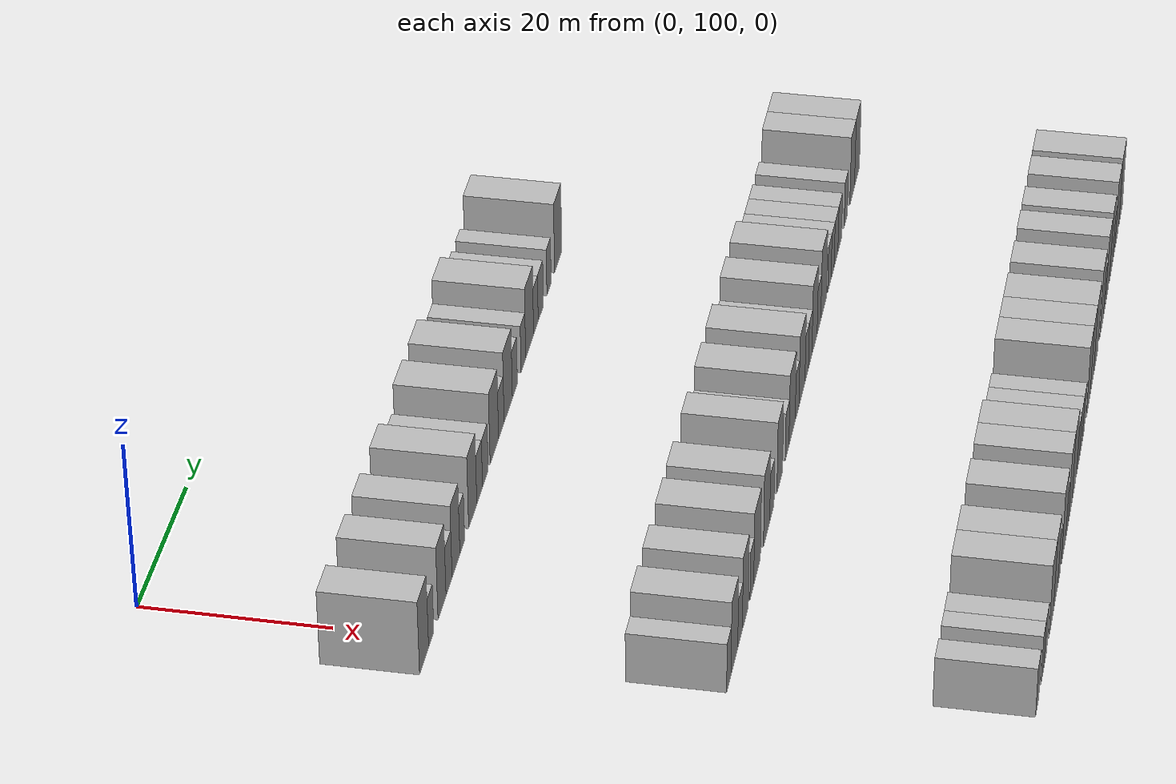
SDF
<sdf version="1.6">
 <world name="default">
  <model name="building_91">
   <static>1</static>
   <pose>25.0000 96.4935 0 0.000000 0.000000 0.000000</pose>
   <link name="link">
    <pose>0 0 4.50 0 0 0</pose>
    <collision name="collision"><geometry><box><size>10.0000 4.2490 9.0000</size></box></geometry></collision>
    <visual name="visual">
     <cast_shadows>0</cast_shadows>
     <geometry><box><size>10.0000 4.2490 9.0000</size></box></geometry>
     <material>
      <script>
       <uri>model://HANNAS_wall/materials/scripts</uri>
       <uri>model://HANNAS_wall/materials/textures</uri>
       <name>vrc/HANNAS_wall</name>
      </script>
     </material>
    </visual>
   </link>
  </model>
  <model name="building_92">
   <static>1</static>
   <pose>25.0000 99.8556 0 0.000000 0.000000 0.000000</pose>
   <link name="link">
    <pose>0 0 3.00 0 0 0</pose>
    <collision name="collision"><geometry><box><size>10.0000 2.4751 6.0000</size></box></geometry></collision>
    <visual name="visual">
     <cast_shadows>0</cast_shadows>
     <geometry><box><size>10.0000 2.4751 6.0000</size></box></geometry>
     <material>
      <script>
       <uri>model://HANNAS_wall/materials/scripts</uri>
       <uri>model://HANNAS_wall/materials/textures</uri>
       <name>vrc/HANNAS_wall</name>
      </script>
     </material>
    </visual>
   </link>
  </model>
  <model name="building_93">
   <static>1</static>
   <pose>25.0000 105.0283 0 0.000000 0.000000 0.000000</pose>
   <link name="link">
    <pose>0 0 4.50 0 0 0</pose>
    <collision name="collision"><geometry><box><size>10.0000 3.8705 9.0000</size></box></geometry></collision>
    <visual name="visual">
     <cast_shadows>0</cast_shadows>
     <geometry><box><size>10.0000 3.8705 9.0000</size></box></geometry>
     <material>
      <script>
       <uri>model://HANNAS_wall/materials/scripts</uri>
       <uri>model://HANNAS_wall/materials/textures</uri>
       <name>vrc/HANNAS_wall</name>
      </script>
     </material>
    </visual>
   </link>
  </model>
  <model name="building_94">
   <static>1</static>
   <pose>25.0000 108.4475 0 0.000000 0.000000 0.000000</pose>
   <link name="link">
    <pose>0 0 3.00 0 0 0</pose>
    <collision name="collision"><geometry><box><size>10.0000 2.9678 6.0000</size></box></geometry></collision>
    <visual name="visual">
     <cast_shadows>0</cast_shadows>
     <geometry><box><size>10.0000 2.9678 6.0000</size></box></geometry>
     <material>
      <script>
       <uri>model://HANNAS_wall/materials/scripts</uri>
       <uri>model://HANNAS_wall/materials/textures</uri>
       <name>vrc/HANNAS_wall</name>
      </script>
     </material>
    </visual>
   </link>
  </model>
  <model name="building_95">
   <static>1</static>
   <pose>25.0000 111.8554 0 0.000000 0.000000 0.000000</pose>
   <link name="link">
    <pose>0 0 4.50 0 0 0</pose>
    <collision name="collision"><geometry><box><size>10.0000 3.8480 9.0000</size></box></geometry></collision>
    <visual name="visual">
     <cast_shadows>0</cast_shadows>
     <geometry><box><size>10.0000 3.8480 9.0000</size></box></geometry>
     <material>
      <script>
       <uri>model://HANNAS_wall/materials/scripts</uri>
       <uri>model://HANNAS_wall/materials/textures</uri>
       <name>vrc/HANNAS_wall</name>
      </script>
     </material>
    </visual>
   </link>
  </model>
  <model name="building_96">
   <static>1</static>
   <pose>25.0000 114.9798 0 0.000000 0.000000 0.000000</pose>
   <link name="link">
    <pose>0 0 3.00 0 0 0</pose>
    <collision name="collision"><geometry><box><size>10.0000 2.4009 6.0000</size></box></geometry></collision>
    <visual name="visual">
     <cast_shadows>0</cast_shadows>
     <geometry><box><size>10.0000 2.4009 6.0000</size></box></geometry>
     <material>
      <script>
       <uri>model://HANNAS_wall/materials/scripts</uri>
       <uri>model://HANNAS_wall/materials/textures</uri>
       <name>vrc/HANNAS_wall</name>
      </script>
     </material>
    </visual>
   </link>
  </model>
  <model name="building_97">
   <static>1</static>
   <pose>25.0000 120.2445 0 0.000000 0.000000 0.000000</pose>
   <link name="link">
    <pose>0 0 4.50 0 0 0</pose>
    <collision name="collision"><geometry><box><size>10.0000 4.1283 9.0000</size></box></geometry></collision>
    <visual name="visual">
     <cast_shadows>0</cast_shadows>
     <geometry><box><size>10.0000 4.1283 9.0000</size></box></geometry>
     <material>
      <script>
       <uri>model://HANNAS_wall/materials/scripts</uri>
       <uri>model://HANNAS_wall/materials/textures</uri>
       <name>vrc/HANNAS_wall</name>
      </script>
     </material>
    </visual>
   </link>
  </model>
  <model name="building_98">
   <static>1</static>
   <pose>25.0000 123.7802 0 0.000000 0.000000 0.000000</pose>
   <link name="link">
    <pose>0 0 3.00 0 0 0</pose>
    <collision name="collision"><geometry><box><size>10.0000 2.9432 6.0000</size></box></geometry></collision>
    <visual name="visual">
     <cast_shadows>0</cast_shadows>
     <geometry><box><size>10.0000 2.9432 6.0000</size></box></geometry>
     <material>
      <script>
       <uri>model://HANNAS_wall/materials/scripts</uri>
       <uri>model://HANNAS_wall/materials/textures</uri>
       <name>vrc/HANNAS_wall</name>
      </script>
     </material>
    </visual>
   </link>
  </model>
  <model name="building_99">
   <static>1</static>
   <pose>25.0000 126.7246 0 0.000000 0.000000 0.000000</pose>
   <link name="link">
    <pose>0 0 3.00 0 0 0</pose>
    <collision name="collision"><geometry><box><size>10.0000 2.9456 6.0000</size></box></geometry></collision>
    <visual name="visual">
     <cast_shadows>0</cast_shadows>
     <geometry><box><size>10.0000 2.9456 6.0000</size></box></geometry>
     <material>
      <script>
       <uri>model://HANNAS_wall/materials/scripts</uri>
       <uri>model://HANNAS_wall/materials/textures</uri>
       <name>vrc/HANNAS_wall</name>
      </script>
     </material>
    </visual>
   </link>
  </model>
  <model name="building_100">
   <static>1</static>
   <pose>25.0000 131.4256 0 0.000000 0.000000 0.000000</pose>
   <link name="link">
    <pose>0 0 4.50 0 0 0</pose>
    <collision name="collision"><geometry><box><size>10.0000 4.4564 9.0000</size></box></geometry></collision>
    <visual name="visual">
     <cast_shadows>0</cast_shadows>
     <geometry><box><size>10.0000 4.4564 9.0000</size></box></geometry>
     <material>
      <script>
       <uri>model://HANNAS_wall/materials/scripts</uri>
       <uri>model://HANNAS_wall/materials/textures</uri>
       <name>vrc/HANNAS_wall</name>
      </script>
     </material>
    </visual>
   </link>
  </model>
  <model name="building_101">
   <static>1</static>
   <pose>25.0000 135.1337 0 0.000000 0.000000 0.000000</pose>
   <link name="link">
    <pose>0 0 3.00 0 0 0</pose>
    <collision name="collision"><geometry><box><size>10.0000 2.9598 6.0000</size></box></geometry></collision>
    <visual name="visual">
     <cast_shadows>0</cast_shadows>
     <geometry><box><size>10.0000 2.9598 6.0000</size></box></geometry>
     <material>
      <script>
       <uri>model://HANNAS_wall/materials/scripts</uri>
       <uri>model://HANNAS_wall/materials/textures</uri>
       <name>vrc/HANNAS_wall</name>
      </script>
     </material>
    </visual>
   </link>
  </model>
  <model name="building_102">
   <static>1</static>
   <pose>25.0000 138.8354 0 0.000000 0.000000 0.000000</pose>
   <link name="link">
    <pose>0 0 4.50 0 0 0</pose>
    <collision name="collision"><geometry><box><size>10.0000 4.4436 9.0000</size></box></geometry></collision>
    <visual name="visual">
     <cast_shadows>0</cast_shadows>
     <geometry><box><size>10.0000 4.4436 9.0000</size></box></geometry>
     <material>
      <script>
       <uri>model://HANNAS_wall/materials/scripts</uri>
       <uri>model://HANNAS_wall/materials/textures</uri>
       <name>vrc/HANNAS_wall</name>
      </script>
     </material>
    </visual>
   </link>
  </model>
  <model name="building_103">
   <static>1</static>
   <pose>25.0000 142.4284 0 0.000000 0.000000 0.000000</pose>
   <link name="link">
    <pose>0 0 3.00 0 0 0</pose>
    <collision name="collision"><geometry><box><size>10.0000 2.7425 6.0000</size></box></geometry></collision>
    <visual name="visual">
     <cast_shadows>0</cast_shadows>
     <geometry><box><size>10.0000 2.7425 6.0000</size></box></geometry>
     <material>
      <script>
       <uri>model://HANNAS_wall/materials/scripts</uri>
       <uri>model://HANNAS_wall/materials/textures</uri>
       <name>vrc/HANNAS_wall</name>
      </script>
     </material>
    </visual>
   </link>
  </model>
  <model name="building_104">
   <static>1</static>
   <pose>25.0000 147.0926 0 0.000000 0.000000 0.000000</pose>
   <link name="link">
    <pose>0 0 3.00 0 0 0</pose>
    <collision name="collision"><geometry><box><size>10.0000 2.5859 6.0000</size></box></geometry></collision>
    <visual name="visual">
     <cast_shadows>0</cast_shadows>
     <geometry><box><size>10.0000 2.5859 6.0000</size></box></geometry>
     <material>
      <script>
       <uri>model://HANNAS_wall/materials/scripts</uri>
       <uri>model://HANNAS_wall/materials/textures</uri>
       <name>vrc/HANNAS_wall</name>
      </script>
     </material>
    </visual>
   </link>
  </model>
  <model name="building_105">
   <static>1</static>
   <pose>25.0000 150.5885 0 0.000000 0.000000 0.000000</pose>
   <link name="link">
    <pose>0 0 4.50 0 0 0</pose>
    <collision name="collision"><geometry><box><size>10.0000 4.4059 9.0000</size></box></geometry></collision>
    <visual name="visual">
     <cast_shadows>0</cast_shadows>
     <geometry><box><size>10.0000 4.4059 9.0000</size></box></geometry>
     <material>
      <script>
       <uri>model://HANNAS_wall/materials/scripts</uri>
       <uri>model://HANNAS_wall/materials/textures</uri>
       <name>vrc/HANNAS_wall</name>
      </script>
     </material>
    </visual>
   </link>
  </model>
  <model name="building_106">
   <static>1</static>
   <pose>25.0000 154.0905 0 0.000000 0.000000 0.000000</pose>
   <link name="link">
    <pose>0 0 3.00 0 0 0</pose>
    <collision name="collision"><geometry><box><size>10.0000 2.5981 6.0000</size></box></geometry></collision>
    <visual name="visual">
     <cast_shadows>0</cast_shadows>
     <geometry><box><size>10.0000 2.5981 6.0000</size></box></geometry>
     <material>
      <script>
       <uri>model://HANNAS_wall/materials/scripts</uri>
       <uri>model://HANNAS_wall/materials/textures</uri>
       <name>vrc/HANNAS_wall</name>
      </script>
     </material>
    </visual>
   </link>
  </model>
  <model name="building_107">
   <static>1</static>
   <pose>25.0000 156.8845 0 0.000000 0.000000 0.000000</pose>
   <link name="link">
    <pose>0 0 3.00 0 0 0</pose>
    <collision name="collision"><geometry><box><size>10.0000 2.9899 6.0000</size></box></geometry></collision>
    <visual name="visual">
     <cast_shadows>0</cast_shadows>
     <geometry><box><size>10.0000 2.9899 6.0000</size></box></geometry>
     <material>
      <script>
       <uri>model://HANNAS_wall/materials/scripts</uri>
       <uri>model://HANNAS_wall/materials/textures</uri>
       <name>vrc/HANNAS_wall</name>
      </script>
     </material>
    </visual>
   </link>
  </model>
  <model name="building_108">
   <static>1</static>
   <pose>25.0000 161.5947 0 0.000000 0.000000 0.000000</pose>
   <link name="link">
    <pose>0 0 3.00 0 0 0</pose>
    <collision name="collision"><geometry><box><size>10.0000 2.4304 6.0000</size></box></geometry></collision>
    <visual name="visual">
     <cast_shadows>0</cast_shadows>
     <geometry><box><size>10.0000 2.4304 6.0000</size></box></geometry>
     <material>
      <script>
       <uri>model://HANNAS_wall/materials/scripts</uri>
       <uri>model://HANNAS_wall/materials/textures</uri>
       <name>vrc/HANNAS_wall</name>
      </script>
     </material>
    </visual>
   </link>
  </model>
  <model name="building_109">
   <static>1</static>
   <pose>25.0000 166.9336 0 0.000000 0.000000 0.000000</pose>
   <link name="link">
    <pose>0 0 4.50 0 0 0</pose>
    <collision name="collision"><geometry><box><size>10.0000 4.2474 9.0000</size></box></geometry></collision>
    <visual name="visual">
     <cast_shadows>0</cast_shadows>
     <geometry><box><size>10.0000 4.2474 9.0000</size></box></geometry>
     <material>
      <script>
       <uri>model://HANNAS_wall/materials/scripts</uri>
       <uri>model://HANNAS_wall/materials/textures</uri>
       <name>vrc/HANNAS_wall</name>
      </script>
     </material>
    </visual>
   </link>
  </model>
  <model name="building_224">
   <static>1</static>
   <pose>55.0000 98.1278 0 0.000000 0.000000 0.000000</pose>
   <link name="link">
    <pose>0 0 3.00 0 0 0</pose>
    <collision name="collision"><geometry><box><size>10.0000 2.7420 6.0000</size></box></geometry></collision>
    <visual name="visual">
     <cast_shadows>0</cast_shadows>
     <geometry><box><size>10.0000 2.7420 6.0000</size></box></geometry>
     <material>
      <script>
       <uri>model://HANNAS_wall/materials/scripts</uri>
       <uri>model://HANNAS_wall/materials/textures</uri>
       <name>vrc/HANNAS_wall</name>
      </script>
     </material>
    </visual>
   </link>
  </model>
  <model name="building_225">
   <static>1</static>
   <pose>55.0000 101.5954 0 0.000000 0.000000 0.000000</pose>
   <link name="link">
    <pose>0 0 4.50 0 0 0</pose>
    <collision name="collision"><geometry><box><size>10.0000 4.1932 9.0000</size></box></geometry></collision>
    <visual name="visual">
     <cast_shadows>0</cast_shadows>
     <geometry><box><size>10.0000 4.1932 9.0000</size></box></geometry>
     <material>
      <script>
       <uri>model://HANNAS_wall/materials/scripts</uri>
       <uri>model://HANNAS_wall/materials/textures</uri>
       <name>vrc/HANNAS_wall</name>
      </script>
     </material>
    </visual>
   </link>
  </model>
  <model name="building_226">
   <static>1</static>
   <pose>55.0000 105.1467 0 0.000000 0.000000 0.000000</pose>
   <link name="link">
    <pose>0 0 3.00 0 0 0</pose>
    <collision name="collision"><geometry><box><size>10.0000 2.9094 6.0000</size></box></geometry></collision>
    <visual name="visual">
     <cast_shadows>0</cast_shadows>
     <geometry><box><size>10.0000 2.9094 6.0000</size></box></geometry>
     <material>
      <script>
       <uri>model://HANNAS_wall/materials/scripts</uri>
       <uri>model://HANNAS_wall/materials/textures</uri>
       <name>vrc/HANNAS_wall</name>
      </script>
     </material>
    </visual>
   </link>
  </model>
  <model name="building_227">
   <static>1</static>
   <pose>55.0000 108.5158 0 0.000000 0.000000 0.000000</pose>
   <link name="link">
    <pose>0 0 4.50 0 0 0</pose>
    <collision name="collision"><geometry><box><size>10.0000 3.8287 9.0000</size></box></geometry></collision>
    <visual name="visual">
     <cast_shadows>0</cast_shadows>
     <geometry><box><size>10.0000 3.8287 9.0000</size></box></geometry>
     <material>
      <script>
       <uri>model://HANNAS_wall/materials/scripts</uri>
       <uri>model://HANNAS_wall/materials/textures</uri>
       <name>vrc/HANNAS_wall</name>
      </script>
     </material>
    </visual>
   </link>
  </model>
  <model name="building_228">
   <static>1</static>
   <pose>55.0000 112.6459 0 0.000000 0.000000 0.000000</pose>
   <link name="link">
    <pose>0 0 3.00 0 0 0</pose>
    <collision name="collision"><geometry><box><size>10.0000 2.4316 6.0000</size></box></geometry></collision>
    <visual name="visual">
     <cast_shadows>0</cast_shadows>
     <geometry><box><size>10.0000 2.4316 6.0000</size></box></geometry>
     <material>
      <script>
       <uri>model://HANNAS_wall/materials/scripts</uri>
       <uri>model://HANNAS_wall/materials/textures</uri>
       <name>vrc/HANNAS_wall</name>
      </script>
     </material>
    </visual>
   </link>
  </model>
  <model name="building_229">
   <static>1</static>
   <pose>55.0000 116.0476 0 0.000000 0.000000 0.000000</pose>
   <link name="link">
    <pose>0 0 4.50 0 0 0</pose>
    <collision name="collision"><geometry><box><size>10.0000 4.3718 9.0000</size></box></geometry></collision>
    <visual name="visual">
     <cast_shadows>0</cast_shadows>
     <geometry><box><size>10.0000 4.3718 9.0000</size></box></geometry>
     <material>
      <script>
       <uri>model://HANNAS_wall/materials/scripts</uri>
       <uri>model://HANNAS_wall/materials/textures</uri>
       <name>vrc/HANNAS_wall</name>
      </script>
     </material>
    </visual>
   </link>
  </model>
  <model name="building_230">
   <static>1</static>
   <pose>55.0000 122.3267 0 0.000000 0.000000 0.000000</pose>
   <link name="link">
    <pose>0 0 4.50 0 0 0</pose>
    <collision name="collision"><geometry><box><size>10.0000 4.1865 9.0000</size></box></geometry></collision>
    <visual name="visual">
     <cast_shadows>0</cast_shadows>
     <geometry><box><size>10.0000 4.1865 9.0000</size></box></geometry>
     <material>
      <script>
       <uri>model://HANNAS_wall/materials/scripts</uri>
       <uri>model://HANNAS_wall/materials/textures</uri>
       <name>vrc/HANNAS_wall</name>
      </script>
     </material>
    </visual>
   </link>
  </model>
  <model name="building_231">
   <static>1</static>
   <pose>55.0000 125.8758 0 0.000000 0.000000 0.000000</pose>
   <link name="link">
    <pose>0 0 3.00 0 0 0</pose>
    <collision name="collision"><geometry><box><size>10.0000 2.9116 6.0000</size></box></geometry></collision>
    <visual name="visual">
     <cast_shadows>0</cast_shadows>
     <geometry><box><size>10.0000 2.9116 6.0000</size></box></geometry>
     <material>
      <script>
       <uri>model://HANNAS_wall/materials/scripts</uri>
       <uri>model://HANNAS_wall/materials/textures</uri>
       <name>vrc/HANNAS_wall</name>
      </script>
     </material>
    </visual>
   </link>
  </model>
  <model name="building_232">
   <static>1</static>
   <pose>55.0000 131.2059 0 0.000000 0.000000 0.000000</pose>
   <link name="link">
    <pose>0 0 4.50 0 0 0</pose>
    <collision name="collision"><geometry><box><size>10.0000 3.7486 9.0000</size></box></geometry></collision>
    <visual name="visual">
     <cast_shadows>0</cast_shadows>
     <geometry><box><size>10.0000 3.7486 9.0000</size></box></geometry>
     <material>
      <script>
       <uri>model://HANNAS_wall/materials/scripts</uri>
       <uri>model://HANNAS_wall/materials/textures</uri>
       <name>vrc/HANNAS_wall</name>
      </script>
     </material>
    </visual>
   </link>
  </model>
  <model name="building_233">
   <static>1</static>
   <pose>55.0000 136.3542 0 0.000000 0.000000 0.000000</pose>
   <link name="link">
    <pose>0 0 3.00 0 0 0</pose>
    <collision name="collision"><geometry><box><size>10.0000 2.5479 6.0000</size></box></geometry></collision>
    <visual name="visual">
     <cast_shadows>0</cast_shadows>
     <geometry><box><size>10.0000 2.5479 6.0000</size></box></geometry>
     <material>
      <script>
       <uri>model://HANNAS_wall/materials/scripts</uri>
       <uri>model://HANNAS_wall/materials/textures</uri>
       <name>vrc/HANNAS_wall</name>
      </script>
     </material>
    </visual>
   </link>
  </model>
  <model name="building_234">
   <static>1</static>
   <pose>55.0000 139.8401 0 0.000000 0.000000 0.000000</pose>
   <link name="link">
    <pose>0 0 4.50 0 0 0</pose>
    <collision name="collision"><geometry><box><size>10.0000 4.4240 9.0000</size></box></geometry></collision>
    <visual name="visual">
     <cast_shadows>0</cast_shadows>
     <geometry><box><size>10.0000 4.4240 9.0000</size></box></geometry>
     <material>
      <script>
       <uri>model://HANNAS_wall/materials/scripts</uri>
       <uri>model://HANNAS_wall/materials/textures</uri>
       <name>vrc/HANNAS_wall</name>
      </script>
     </material>
    </visual>
   </link>
  </model>
  <model name="building_235">
   <static>1</static>
   <pose>55.0000 143.3857 0 0.000000 0.000000 0.000000</pose>
   <link name="link">
    <pose>0 0 3.00 0 0 0</pose>
    <collision name="collision"><geometry><box><size>10.0000 2.6671 6.0000</size></box></geometry></collision>
    <visual name="visual">
     <cast_shadows>0</cast_shadows>
     <geometry><box><size>10.0000 2.6671 6.0000</size></box></geometry>
     <material>
      <script>
       <uri>model://HANNAS_wall/materials/scripts</uri>
       <uri>model://HANNAS_wall/materials/textures</uri>
       <name>vrc/HANNAS_wall</name>
      </script>
     </material>
    </visual>
   </link>
  </model>
  <model name="building_236">
   <static>1</static>
   <pose>55.0000 146.8959 0 0.000000 0.000000 0.000000</pose>
   <link name="link">
    <pose>0 0 4.50 0 0 0</pose>
    <collision name="collision"><geometry><box><size>10.0000 4.3533 9.0000</size></box></geometry></collision>
    <visual name="visual">
     <cast_shadows>0</cast_shadows>
     <geometry><box><size>10.0000 4.3533 9.0000</size></box></geometry>
     <material>
      <script>
       <uri>model://HANNAS_wall/materials/scripts</uri>
       <uri>model://HANNAS_wall/materials/textures</uri>
       <name>vrc/HANNAS_wall</name>
      </script>
     </material>
    </visual>
   </link>
  </model>
  <model name="building_237">
   <static>1</static>
   <pose>55.0000 150.3574 0 0.000000 0.000000 0.000000</pose>
   <link name="link">
    <pose>0 0 3.00 0 0 0</pose>
    <collision name="collision"><geometry><box><size>10.0000 2.5697 6.0000</size></box></geometry></collision>
    <visual name="visual">
     <cast_shadows>0</cast_shadows>
     <geometry><box><size>10.0000 2.5697 6.0000</size></box></geometry>
     <material>
      <script>
       <uri>model://HANNAS_wall/materials/scripts</uri>
       <uri>model://HANNAS_wall/materials/textures</uri>
       <name>vrc/HANNAS_wall</name>
      </script>
     </material>
    </visual>
   </link>
  </model>
  <model name="building_238">
   <static>1</static>
   <pose>55.0000 152.8997 0 0.000000 0.000000 0.000000</pose>
   <link name="link">
    <pose>0 0 3.00 0 0 0</pose>
    <collision name="collision"><geometry><box><size>10.0000 2.5149 6.0000</size></box></geometry></collision>
    <visual name="visual">
     <cast_shadows>0</cast_shadows>
     <geometry><box><size>10.0000 2.5149 6.0000</size></box></geometry>
     <material>
      <script>
       <uri>model://HANNAS_wall/materials/scripts</uri>
       <uri>model://HANNAS_wall/materials/textures</uri>
       <name>vrc/HANNAS_wall</name>
      </script>
     </material>
    </visual>
   </link>
  </model>
  <model name="building_239">
   <static>1</static>
   <pose>55.0000 156.1098 0 0.000000 0.000000 0.000000</pose>
   <link name="link">
    <pose>0 0 4.50 0 0 0</pose>
    <collision name="collision"><geometry><box><size>10.0000 3.9054 9.0000</size></box></geometry></collision>
    <visual name="visual">
     <cast_shadows>0</cast_shadows>
     <geometry><box><size>10.0000 3.9054 9.0000</size></box></geometry>
     <material>
      <script>
       <uri>model://HANNAS_wall/materials/scripts</uri>
       <uri>model://HANNAS_wall/materials/textures</uri>
       <name>vrc/HANNAS_wall</name>
      </script>
     </material>
    </visual>
   </link>
  </model>
  <model name="building_240">
   <static>1</static>
   <pose>55.0000 159.4379 0 0.000000 0.000000 0.000000</pose>
   <link name="link">
    <pose>0 0 3.00 0 0 0</pose>
    <collision name="collision"><geometry><box><size>10.0000 2.7508 6.0000</size></box></geometry></collision>
    <visual name="visual">
     <cast_shadows>0</cast_shadows>
     <geometry><box><size>10.0000 2.7508 6.0000</size></box></geometry>
     <material>
      <script>
       <uri>model://HANNAS_wall/materials/scripts</uri>
       <uri>model://HANNAS_wall/materials/textures</uri>
       <name>vrc/HANNAS_wall</name>
      </script>
     </material>
    </visual>
   </link>
  </model>
  <model name="building_241">
   <static>1</static>
   <pose>55.0000 162.9006 0 0.000000 0.000000 0.000000</pose>
   <link name="link">
    <pose>0 0 4.50 0 0 0</pose>
    <collision name="collision"><geometry><box><size>10.0000 4.1746 9.0000</size></box></geometry></collision>
    <visual name="visual">
     <cast_shadows>0</cast_shadows>
     <geometry><box><size>10.0000 4.1746 9.0000</size></box></geometry>
     <material>
      <script>
       <uri>model://HANNAS_wall/materials/scripts</uri>
       <uri>model://HANNAS_wall/materials/textures</uri>
       <name>vrc/HANNAS_wall</name>
      </script>
     </material>
    </visual>
   </link>
  </model>
  <model name="building_242">
   <static>1</static>
   <pose>55.0000 167.3005 0 0.000000 0.000000 0.000000</pose>
   <link name="link">
    <pose>0 0 3.00 0 0 0</pose>
    <collision name="collision"><geometry><box><size>10.0000 2.6252 6.0000</size></box></geometry></collision>
    <visual name="visual">
     <cast_shadows>0</cast_shadows>
     <geometry><box><size>10.0000 2.6252 6.0000</size></box></geometry>
     <material>
      <script>
       <uri>model://HANNAS_wall/materials/scripts</uri>
       <uri>model://HANNAS_wall/materials/textures</uri>
       <name>vrc/HANNAS_wall</name>
      </script>
     </material>
    </visual>
   </link>
  </model>
  <model name="building_243">
   <static>1</static>
   <pose>55.0000 169.8224 0 0.000000 0.000000 0.000000</pose>
   <link name="link">
    <pose>0 0 3.00 0 0 0</pose>
    <collision name="collision"><geometry><box><size>10.0000 2.4186 6.0000</size></box></geometry></collision>
    <visual name="visual">
     <cast_shadows>0</cast_shadows>
     <geometry><box><size>10.0000 2.4186 6.0000</size></box></geometry>
     <material>
      <script>
       <uri>model://HANNAS_wall/materials/scripts</uri>
       <uri>model://HANNAS_wall/materials/textures</uri>
       <name>vrc/HANNAS_wall</name>
      </script>
     </material>
    </visual>
   </link>
  </model>
  <model name="building_244">
   <static>1</static>
   <pose>55.0000 172.5305 0 0.000000 0.000000 0.000000</pose>
   <link name="link">
    <pose>0 0 3.00 0 0 0</pose>
    <collision name="collision"><geometry><box><size>10.0000 2.9975 6.0000</size></box></geometry></collision>
    <visual name="visual">
     <cast_shadows>0</cast_shadows>
     <geometry><box><size>10.0000 2.9975 6.0000</size></box></geometry>
     <material>
      <script>
       <uri>model://HANNAS_wall/materials/scripts</uri>
       <uri>model://HANNAS_wall/materials/textures</uri>
       <name>vrc/HANNAS_wall</name>
      </script>
     </material>
    </visual>
   </link>
  </model>
  <model name="building_245">
   <static>1</static>
   <pose>55.0000 175.4483 0 0.000000 0.000000 0.000000</pose>
   <link name="link">
    <pose>0 0 3.00 0 0 0</pose>
    <collision name="collision"><geometry><box><size>10.0000 2.8380 6.0000</size></box></geometry></collision>
    <visual name="visual">
     <cast_shadows>0</cast_shadows>
     <geometry><box><size>10.0000 2.8380 6.0000</size></box></geometry>
     <material>
      <script>
       <uri>model://HANNAS_wall/materials/scripts</uri>
       <uri>model://HANNAS_wall/materials/textures</uri>
       <name>vrc/HANNAS_wall</name>
      </script>
     </material>
    </visual>
   </link>
  </model>
  <model name="building_246">
   <static>1</static>
   <pose>55.0000 180.1754 0 0.000000 0.000000 0.000000</pose>
   <link name="link">
    <pose>0 0 3.00 0 0 0</pose>
    <collision name="collision"><geometry><box><size>10.0000 2.6161 6.0000</size></box></geometry></collision>
    <visual name="visual">
     <cast_shadows>0</cast_shadows>
     <geometry><box><size>10.0000 2.6161 6.0000</size></box></geometry>
     <material>
      <script>
       <uri>model://HANNAS_wall/materials/scripts</uri>
       <uri>model://HANNAS_wall/materials/textures</uri>
       <name>vrc/HANNAS_wall</name>
      </script>
     </material>
    </visual>
   </link>
  </model>
  <model name="building_247">
   <static>1</static>
   <pose>55.0000 185.3815 0 0.000000 0.000000 0.000000</pose>
   <link name="link">
    <pose>0 0 4.50 0 0 0</pose>
    <collision name="collision"><geometry><box><size>10.0000 3.7962 9.0000</size></box></geometry></collision>
    <visual name="visual">
     <cast_shadows>0</cast_shadows>
     <geometry><box><size>10.0000 3.7962 9.0000</size></box></geometry>
     <material>
      <script>
       <uri>model://HANNAS_wall/materials/scripts</uri>
       <uri>model://HANNAS_wall/materials/textures</uri>
       <name>vrc/HANNAS_wall</name>
      </script>
     </material>
    </visual>
   </link>
  </model>
  <model name="building_248">
   <static>1</static>
   <pose>55.0000 189.3229 0 0.000000 0.000000 0.000000</pose>
   <link name="link">
    <pose>0 0 4.50 0 0 0</pose>
    <collision name="collision"><geometry><box><size>10.0000 4.0865 9.0000</size></box></geometry></collision>
    <visual name="visual">
     <cast_shadows>0</cast_shadows>
     <geometry><box><size>10.0000 4.0865 9.0000</size></box></geometry>
     <material>
      <script>
       <uri>model://HANNAS_wall/materials/scripts</uri>
       <uri>model://HANNAS_wall/materials/textures</uri>
       <name>vrc/HANNAS_wall</name>
      </script>
     </material>
    </visual>
   </link>
  </model>
  <model name="building_359">
   <static>1</static>
   <pose>85.0000 99.6532 0 0.000000 0.000000 0.000000</pose>
   <link name="link">
    <pose>0 0 3.00 0 0 0</pose>
    <collision name="collision"><geometry><box><size>10.0000 2.9987 6.0000</size></box></geometry></collision>
    <visual name="visual">
     <cast_shadows>0</cast_shadows>
     <geometry><box><size>10.0000 2.9987 6.0000</size></box></geometry>
     <material>
      <script>
       <uri>model://HANNAS_wall/materials/scripts</uri>
       <uri>model://HANNAS_wall/materials/textures</uri>
       <name>vrc/HANNAS_wall</name>
      </script>
     </material>
    </visual>
   </link>
  </model>
  <model name="building_360">
   <static>1</static>
   <pose>85.0000 104.3724 0 0.000000 0.000000 0.000000</pose>
   <link name="link">
    <pose>0 0 3.00 0 0 0</pose>
    <collision name="collision"><geometry><box><size>10.0000 2.4397 6.0000</size></box></geometry></collision>
    <visual name="visual">
     <cast_shadows>0</cast_shadows>
     <geometry><box><size>10.0000 2.4397 6.0000</size></box></geometry>
     <material>
      <script>
       <uri>model://HANNAS_wall/materials/scripts</uri>
       <uri>model://HANNAS_wall/materials/textures</uri>
       <name>vrc/HANNAS_wall</name>
      </script>
     </material>
    </visual>
   </link>
  </model>
  <model name="building_361">
   <static>1</static>
   <pose>85.0000 107.0558 0 0.000000 0.000000 0.000000</pose>
   <link name="link">
    <pose>0 0 3.00 0 0 0</pose>
    <collision name="collision"><geometry><box><size>10.0000 2.9271 6.0000</size></box></geometry></collision>
    <visual name="visual">
     <cast_shadows>0</cast_shadows>
     <geometry><box><size>10.0000 2.9271 6.0000</size></box></geometry>
     <material>
      <script>
       <uri>model://HANNAS_wall/materials/scripts</uri>
       <uri>model://HANNAS_wall/materials/textures</uri>
       <name>vrc/HANNAS_wall</name>
      </script>
     </material>
    </visual>
   </link>
  </model>
  <model name="building_362">
   <static>1</static>
   <pose>85.0000 112.6470 0 0.000000 0.000000 0.000000</pose>
   <link name="link">
    <pose>0 0 4.50 0 0 0</pose>
    <collision name="collision"><geometry><box><size>10.0000 4.2553 9.0000</size></box></geometry></collision>
    <visual name="visual">
     <cast_shadows>0</cast_shadows>
     <geometry><box><size>10.0000 4.2553 9.0000</size></box></geometry>
     <material>
      <script>
       <uri>model://HANNAS_wall/materials/scripts</uri>
       <uri>model://HANNAS_wall/materials/textures</uri>
       <name>vrc/HANNAS_wall</name>
      </script>
     </material>
    </visual>
   </link>
  </model>
  <model name="building_363">
   <static>1</static>
   <pose>85.0000 116.8332 0 0.000000 0.000000 0.000000</pose>
   <link name="link">
    <pose>0 0 4.50 0 0 0</pose>
    <collision name="collision"><geometry><box><size>10.0000 4.1170 9.0000</size></box></geometry></collision>
    <visual name="visual">
     <cast_shadows>0</cast_shadows>
     <geometry><box><size>10.0000 4.1170 9.0000</size></box></geometry>
     <material>
      <script>
       <uri>model://HANNAS_wall/materials/scripts</uri>
       <uri>model://HANNAS_wall/materials/textures</uri>
       <name>vrc/HANNAS_wall</name>
      </script>
     </material>
    </visual>
   </link>
  </model>
  <model name="building_364">
   <static>1</static>
   <pose>85.0000 120.1593 0 0.000000 0.000000 0.000000</pose>
   <link name="link">
    <pose>0 0 3.00 0 0 0</pose>
    <collision name="collision"><geometry><box><size>10.0000 2.5354 6.0000</size></box></geometry></collision>
    <visual name="visual">
     <cast_shadows>0</cast_shadows>
     <geometry><box><size>10.0000 2.5354 6.0000</size></box></geometry>
     <material>
      <script>
       <uri>model://HANNAS_wall/materials/scripts</uri>
       <uri>model://HANNAS_wall/materials/textures</uri>
       <name>vrc/HANNAS_wall</name>
      </script>
     </material>
    </visual>
   </link>
  </model>
  <model name="building_365">
   <static>1</static>
   <pose>85.0000 124.5559 0 0.000000 0.000000 0.000000</pose>
   <link name="link">
    <pose>0 0 4.50 0 0 0</pose>
    <collision name="collision"><geometry><box><size>10.0000 4.2577 9.0000</size></box></geometry></collision>
    <visual name="visual">
     <cast_shadows>0</cast_shadows>
     <geometry><box><size>10.0000 4.2577 9.0000</size></box></geometry>
     <material>
      <script>
       <uri>model://HANNAS_wall/materials/scripts</uri>
       <uri>model://HANNAS_wall/materials/textures</uri>
       <name>vrc/HANNAS_wall</name>
      </script>
     </material>
    </visual>
   </link>
  </model>
  <model name="building_366">
   <static>1</static>
   <pose>85.0000 127.9231 0 0.000000 0.000000 0.000000</pose>
   <link name="link">
    <pose>0 0 3.00 0 0 0</pose>
    <collision name="collision"><geometry><box><size>10.0000 2.4768 6.0000</size></box></geometry></collision>
    <visual name="visual">
     <cast_shadows>0</cast_shadows>
     <geometry><box><size>10.0000 2.4768 6.0000</size></box></geometry>
     <material>
      <script>
       <uri>model://HANNAS_wall/materials/scripts</uri>
       <uri>model://HANNAS_wall/materials/textures</uri>
       <name>vrc/HANNAS_wall</name>
      </script>
     </material>
    </visual>
   </link>
  </model>
  <model name="building_367">
   <static>1</static>
   <pose>85.0000 131.0327 0 0.000000 0.000000 0.000000</pose>
   <link name="link">
    <pose>0 0 4.50 0 0 0</pose>
    <collision name="collision"><geometry><box><size>10.0000 3.7424 9.0000</size></box></geometry></collision>
    <visual name="visual">
     <cast_shadows>0</cast_shadows>
     <geometry><box><size>10.0000 3.7424 9.0000</size></box></geometry>
     <material>
      <script>
       <uri>model://HANNAS_wall/materials/scripts</uri>
       <uri>model://HANNAS_wall/materials/textures</uri>
       <name>vrc/HANNAS_wall</name>
      </script>
     </material>
    </visual>
   </link>
  </model>
  <model name="building_368">
   <static>1</static>
   <pose>85.0000 134.9023 0 0.000000 0.000000 0.000000</pose>
   <link name="link">
    <pose>0 0 4.50 0 0 0</pose>
    <collision name="collision"><geometry><box><size>10.0000 3.9969 9.0000</size></box></geometry></collision>
    <visual name="visual">
     <cast_shadows>0</cast_shadows>
     <geometry><box><size>10.0000 3.9969 9.0000</size></box></geometry>
     <material>
      <script>
       <uri>model://HANNAS_wall/materials/scripts</uri>
       <uri>model://HANNAS_wall/materials/textures</uri>
       <name>vrc/HANNAS_wall</name>
      </script>
     </material>
    </visual>
   </link>
  </model>
  <model name="building_369">
   <static>1</static>
   <pose>85.0000 139.2153 0 0.000000 0.000000 0.000000</pose>
   <link name="link">
    <pose>0 0 3.00 0 0 0</pose>
    <collision name="collision"><geometry><box><size>10.0000 2.6291 6.0000</size></box></geometry></collision>
    <visual name="visual">
     <cast_shadows>0</cast_shadows>
     <geometry><box><size>10.0000 2.6291 6.0000</size></box></geometry>
     <material>
      <script>
       <uri>model://HANNAS_wall/materials/scripts</uri>
       <uri>model://HANNAS_wall/materials/textures</uri>
       <name>vrc/HANNAS_wall</name>
      </script>
     </material>
    </visual>
   </link>
  </model>
  <model name="building_370">
   <static>1</static>
   <pose>85.0000 141.9546 0 0.000000 0.000000 0.000000</pose>
   <link name="link">
    <pose>0 0 3.00 0 0 0</pose>
    <collision name="collision"><geometry><box><size>10.0000 2.8494 6.0000</size></box></geometry></collision>
    <visual name="visual">
     <cast_shadows>0</cast_shadows>
     <geometry><box><size>10.0000 2.8494 6.0000</size></box></geometry>
     <material>
      <script>
       <uri>model://HANNAS_wall/materials/scripts</uri>
       <uri>model://HANNAS_wall/materials/textures</uri>
       <name>vrc/HANNAS_wall</name>
      </script>
     </material>
    </visual>
   </link>
  </model>
  <model name="building_371">
   <static>1</static>
   <pose>85.0000 144.6244 0 0.000000 0.000000 0.000000</pose>
   <link name="link">
    <pose>0 0 3.00 0 0 0</pose>
    <collision name="collision"><geometry><box><size>10.0000 2.4903 6.0000</size></box></geometry></collision>
    <visual name="visual">
     <cast_shadows>0</cast_shadows>
     <geometry><box><size>10.0000 2.4903 6.0000</size></box></geometry>
     <material>
      <script>
       <uri>model://HANNAS_wall/materials/scripts</uri>
       <uri>model://HANNAS_wall/materials/textures</uri>
       <name>vrc/HANNAS_wall</name>
      </script>
     </material>
    </visual>
   </link>
  </model>
  <model name="building_372">
   <static>1</static>
   <pose>85.0000 149.9006 0 0.000000 0.000000 0.000000</pose>
   <link name="link">
    <pose>0 0 4.50 0 0 0</pose>
    <collision name="collision"><geometry><box><size>10.0000 4.0621 9.0000</size></box></geometry></collision>
    <visual name="visual">
     <cast_shadows>0</cast_shadows>
     <geometry><box><size>10.0000 4.0621 9.0000</size></box></geometry>
     <material>
      <script>
       <uri>model://HANNAS_wall/materials/scripts</uri>
       <uri>model://HANNAS_wall/materials/textures</uri>
       <name>vrc/HANNAS_wall</name>
      </script>
     </material>
    </visual>
   </link>
  </model>
  <model name="building_373">
   <static>1</static>
   <pose>85.0000 153.8373 0 0.000000 0.000000 0.000000</pose>
   <link name="link">
    <pose>0 0 4.50 0 0 0</pose>
    <collision name="collision"><geometry><box><size>10.0000 3.8113 9.0000</size></box></geometry></collision>
    <visual name="visual">
     <cast_shadows>0</cast_shadows>
     <geometry><box><size>10.0000 3.8113 9.0000</size></box></geometry>
     <material>
      <script>
       <uri>model://HANNAS_wall/materials/scripts</uri>
       <uri>model://HANNAS_wall/materials/textures</uri>
       <name>vrc/HANNAS_wall</name>
      </script>
     </material>
    </visual>
   </link>
  </model>
  <model name="building_374">
   <static>1</static>
   <pose>85.0000 157.9921 0 0.000000 0.000000 0.000000</pose>
   <link name="link">
    <pose>0 0 4.50 0 0 0</pose>
    <collision name="collision"><geometry><box><size>10.0000 4.4983 9.0000</size></box></geometry></collision>
    <visual name="visual">
     <cast_shadows>0</cast_shadows>
     <geometry><box><size>10.0000 4.4983 9.0000</size></box></geometry>
     <material>
      <script>
       <uri>model://HANNAS_wall/materials/scripts</uri>
       <uri>model://HANNAS_wall/materials/textures</uri>
       <name>vrc/HANNAS_wall</name>
      </script>
     </material>
    </visual>
   </link>
  </model>
  <model name="building_375">
   <static>1</static>
   <pose>85.0000 164.2936 0 0.000000 0.000000 0.000000</pose>
   <link name="link">
    <pose>0 0 4.50 0 0 0</pose>
    <collision name="collision"><geometry><box><size>10.0000 4.1046 9.0000</size></box></geometry></collision>
    <visual name="visual">
     <cast_shadows>0</cast_shadows>
     <geometry><box><size>10.0000 4.1046 9.0000</size></box></geometry>
     <material>
      <script>
       <uri>model://HANNAS_wall/materials/scripts</uri>
       <uri>model://HANNAS_wall/materials/textures</uri>
       <name>vrc/HANNAS_wall</name>
      </script>
     </material>
    </visual>
   </link>
  </model>
  <model name="building_376">
   <static>1</static>
   <pose>85.0000 167.5560 0 0.000000 0.000000 0.000000</pose>
   <link name="link">
    <pose>0 0 3.00 0 0 0</pose>
    <collision name="collision"><geometry><box><size>10.0000 2.4202 6.0000</size></box></geometry></collision>
    <visual name="visual">
     <cast_shadows>0</cast_shadows>
     <geometry><box><size>10.0000 2.4202 6.0000</size></box></geometry>
     <material>
      <script>
       <uri>model://HANNAS_wall/materials/scripts</uri>
       <uri>model://HANNAS_wall/materials/textures</uri>
       <name>vrc/HANNAS_wall</name>
      </script>
     </material>
    </visual>
   </link>
  </model>
  <model name="building_377">
   <static>1</static>
   <pose>85.0000 170.5937 0 0.000000 0.000000 0.000000</pose>
   <link name="link">
    <pose>0 0 4.50 0 0 0</pose>
    <collision name="collision"><geometry><box><size>10.0000 3.6553 9.0000</size></box></geometry></collision>
    <visual name="visual">
     <cast_shadows>0</cast_shadows>
     <geometry><box><size>10.0000 3.6553 9.0000</size></box></geometry>
     <material>
      <script>
       <uri>model://HANNAS_wall/materials/scripts</uri>
       <uri>model://HANNAS_wall/materials/textures</uri>
       <name>vrc/HANNAS_wall</name>
      </script>
     </material>
    </visual>
   </link>
  </model>
  <model name="building_378">
   <static>1</static>
   <pose>85.0000 175.2540 0 0.000000 0.000000 0.000000</pose>
   <link name="link">
    <pose>0 0 4.50 0 0 0</pose>
    <collision name="collision"><geometry><box><size>10.0000 3.6652 9.0000</size></box></geometry></collision>
    <visual name="visual">
     <cast_shadows>0</cast_shadows>
     <geometry><box><size>10.0000 3.6652 9.0000</size></box></geometry>
     <material>
      <script>
       <uri>model://HANNAS_wall/materials/scripts</uri>
       <uri>model://HANNAS_wall/materials/textures</uri>
       <name>vrc/HANNAS_wall</name>
      </script>
     </material>
    </visual>
   </link>
  </model>
  <model name="building_379">
   <static>1</static>
   <pose>85.0000 178.3381 0 0.000000 0.000000 0.000000</pose>
   <link name="link">
    <pose>0 0 3.00 0 0 0</pose>
    <collision name="collision"><geometry><box><size>10.0000 2.5031 6.0000</size></box></geometry></collision>
    <visual name="visual">
     <cast_shadows>0</cast_shadows>
     <geometry><box><size>10.0000 2.5031 6.0000</size></box></geometry>
     <material>
      <script>
       <uri>model://HANNAS_wall/materials/scripts</uri>
       <uri>model://HANNAS_wall/materials/textures</uri>
       <name>vrc/HANNAS_wall</name>
      </script>
     </material>
    </visual>
   </link>
  </model>
  <model name="building_380">
   <static>1</static>
   <pose>85.0000 181.4800 0 0.000000 0.000000 0.000000</pose>
   <link name="link">
    <pose>0 0 4.50 0 0 0</pose>
    <collision name="collision"><geometry><box><size>10.0000 3.7808 9.0000</size></box></geometry></collision>
    <visual name="visual">
     <cast_shadows>0</cast_shadows>
     <geometry><box><size>10.0000 3.7808 9.0000</size></box></geometry>
     <material>
      <script>
       <uri>model://HANNAS_wall/materials/scripts</uri>
       <uri>model://HANNAS_wall/materials/textures</uri>
       <name>vrc/HANNAS_wall</name>
      </script>
     </material>
    </visual>
   </link>
  </model>
  <model name="building_381">
   <static>1</static>
   <pose>85.0000 186.5209 0 0.000000 0.000000 0.000000</pose>
   <link name="link">
    <pose>0 0 4.50 0 0 0</pose>
    <collision name="collision"><geometry><box><size>10.0000 4.3010 9.0000</size></box></geometry></collision>
    <visual name="visual">
     <cast_shadows>0</cast_shadows>
     <geometry><box><size>10.0000 4.3010 9.0000</size></box></geometry>
     <material>
      <script>
       <uri>model://HANNAS_wall/materials/scripts</uri>
       <uri>model://HANNAS_wall/materials/textures</uri>
       <name>vrc/HANNAS_wall</name>
      </script>
     </material>
    </visual>
   </link>
  </model>
 </world>
</sdf>
